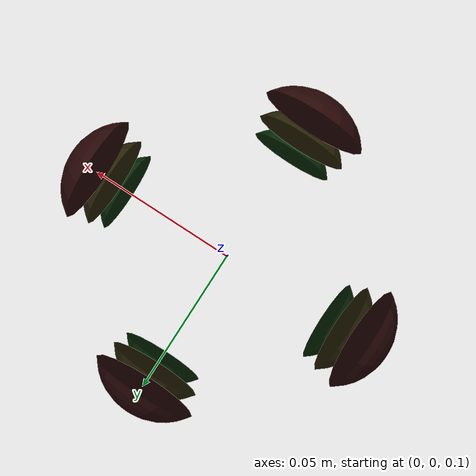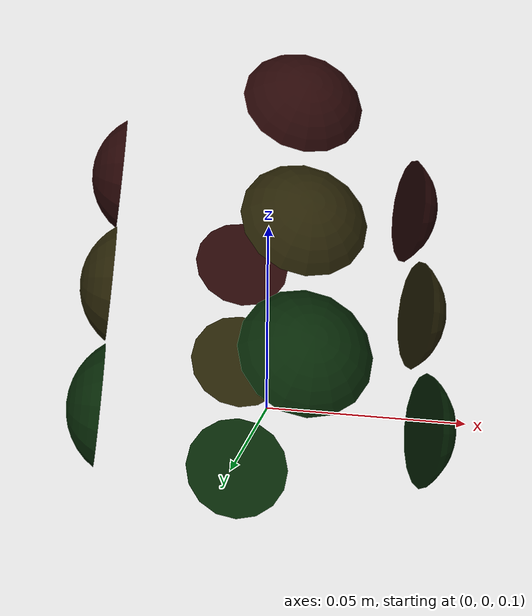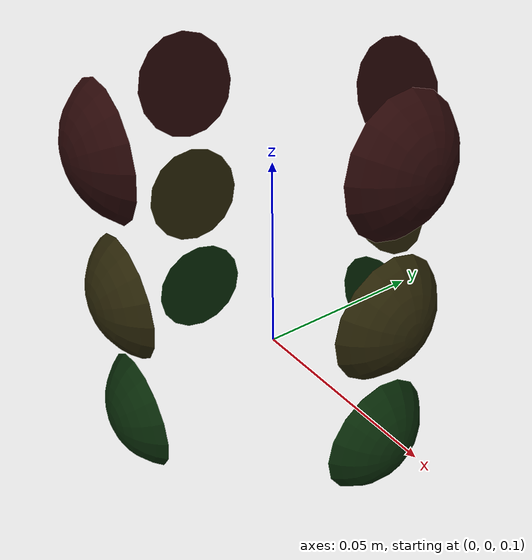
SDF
<?xml version="1.0"?>
<sdf version="1.7">
  <model name="traffic_light">
    <static>true</static>
    <link name="lamp_link">

      <visual name="lamp_red_n_dome">
        <pose>0.0000 0.0387 0.1604 -1.5708 0 0</pose>
        <geometry>
          <mesh>
            <uri>model://traffic_light/meshes/lens_dome.stl</uri>
          </mesh>
        </geometry>
        <material>
          <ambient>0.15 0.02 0.02 1</ambient>
          <diffuse>0.15 0.02 0.02 1</diffuse>
          <emissive>0.05 0 0 1</emissive>
        </material>
      </visual>

      <visual name="lamp_red_s_dome">
        <pose>0.0000 -0.0387 0.1604 1.5708 0 0</pose>
        <geometry>
          <mesh>
            <uri>model://traffic_light/meshes/lens_dome.stl</uri>
          </mesh>
        </geometry>
        <material>
          <ambient>0.15 0.02 0.02 1</ambient>
          <diffuse>0.15 0.02 0.02 1</diffuse>
          <emissive>0.05 0 0 1</emissive>
        </material>
      </visual>

      <visual name="lamp_red_e_dome">
        <pose>0.0387 0.0000 0.1604 0 1.5708 0</pose>
        <geometry>
          <mesh>
            <uri>model://traffic_light/meshes/lens_dome.stl</uri>
          </mesh>
        </geometry>
        <material>
          <ambient>0.15 0.02 0.02 1</ambient>
          <diffuse>0.15 0.02 0.02 1</diffuse>
          <emissive>0.05 0 0 1</emissive>
        </material>
      </visual>

      <visual name="lamp_red_w_dome">
        <pose>-0.0387 0.0000 0.1604 0 -1.5708 0</pose>
        <geometry>
          <mesh>
            <uri>model://traffic_light/meshes/lens_dome.stl</uri>
          </mesh>
        </geometry>
        <material>
          <ambient>0.15 0.02 0.02 1</ambient>
          <diffuse>0.15 0.02 0.02 1</diffuse>
          <emissive>0.05 0 0 1</emissive>
        </material>
      </visual>

      <visual name="lamp_yellow_n_dome">
        <pose>0.0000 0.0387 0.1287 -1.5708 0 0</pose>
        <geometry>
          <mesh>
            <uri>model://traffic_light/meshes/lens_dome.stl</uri>
          </mesh>
        </geometry>
        <material>
          <ambient>0.15 0.13 0.02 1</ambient>
          <diffuse>0.15 0.13 0.02 1</diffuse>
          <emissive>0.05 0.04 0 1</emissive>
        </material>
      </visual>

      <visual name="lamp_yellow_s_dome">
        <pose>0.0000 -0.0387 0.1287 1.5708 0 0</pose>
        <geometry>
          <mesh>
            <uri>model://traffic_light/meshes/lens_dome.stl</uri>
          </mesh>
        </geometry>
        <material>
          <ambient>0.15 0.13 0.02 1</ambient>
          <diffuse>0.15 0.13 0.02 1</diffuse>
          <emissive>0.05 0.04 0 1</emissive>
        </material>
      </visual>

      <visual name="lamp_yellow_e_dome">
        <pose>0.0387 0.0000 0.1287 0 1.5708 0</pose>
        <geometry>
          <mesh>
            <uri>model://traffic_light/meshes/lens_dome.stl</uri>
          </mesh>
        </geometry>
        <material>
          <ambient>0.15 0.13 0.02 1</ambient>
          <diffuse>0.15 0.13 0.02 1</diffuse>
          <emissive>0.05 0.04 0 1</emissive>
        </material>
      </visual>

      <visual name="lamp_yellow_w_dome">
        <pose>-0.0387 0.0000 0.1287 0 -1.5708 0</pose>
        <geometry>
          <mesh>
            <uri>model://traffic_light/meshes/lens_dome.stl</uri>
          </mesh>
        </geometry>
        <material>
          <ambient>0.15 0.13 0.02 1</ambient>
          <diffuse>0.15 0.13 0.02 1</diffuse>
          <emissive>0.05 0.04 0 1</emissive>
        </material>
      </visual>

      <visual name="lamp_green_n_dome">
        <pose>0.0000 0.0387 0.0974 -1.5708 0 0</pose>
        <geometry>
          <mesh>
            <uri>model://traffic_light/meshes/lens_dome.stl</uri>
          </mesh>
        </geometry>
        <material>
          <ambient>0.02 0.15 0.02 1</ambient>
          <diffuse>0.02 0.15 0.02 1</diffuse>
          <emissive>0 0.05 0 1</emissive>
        </material>
      </visual>

      <visual name="lamp_green_s_dome">
        <pose>0.0000 -0.0387 0.0974 1.5708 0 0</pose>
        <geometry>
          <mesh>
            <uri>model://traffic_light/meshes/lens_dome.stl</uri>
          </mesh>
        </geometry>
        <material>
          <ambient>0.02 0.15 0.02 1</ambient>
          <diffuse>0.02 0.15 0.02 1</diffuse>
          <emissive>0 0.05 0 1</emissive>
        </material>
      </visual>

      <visual name="lamp_green_e_dome">
        <pose>0.0387 0.0000 0.0974 0 1.5708 0</pose>
        <geometry>
          <mesh>
            <uri>model://traffic_light/meshes/lens_dome.stl</uri>
          </mesh>
        </geometry>
        <material>
          <ambient>0.02 0.15 0.02 1</ambient>
          <diffuse>0.02 0.15 0.02 1</diffuse>
          <emissive>0 0.05 0 1</emissive>
        </material>
      </visual>

      <visual name="lamp_green_w_dome">
        <pose>-0.0387 0.0000 0.0974 0 -1.5708 0</pose>
        <geometry>
          <mesh>
            <uri>model://traffic_light/meshes/lens_dome.stl</uri>
          </mesh>
        </geometry>
        <material>
          <ambient>0.02 0.15 0.02 1</ambient>
          <diffuse>0.02 0.15 0.02 1</diffuse>
          <emissive>0 0.05 0 1</emissive>
        </material>
      </visual>

    </link>
  </model>
</sdf>
